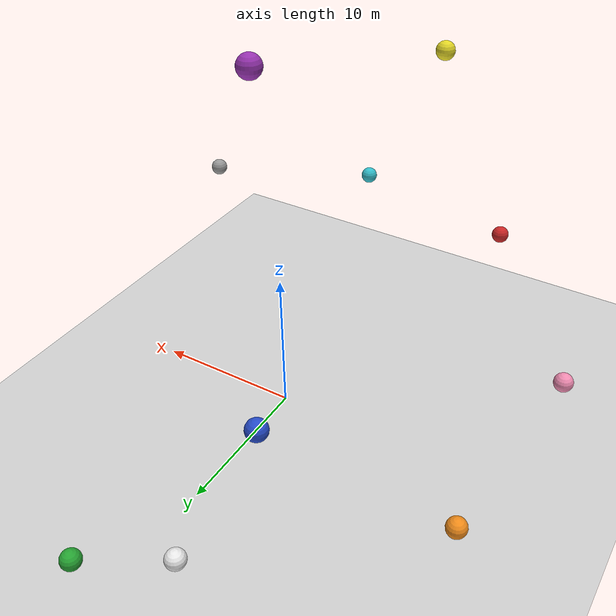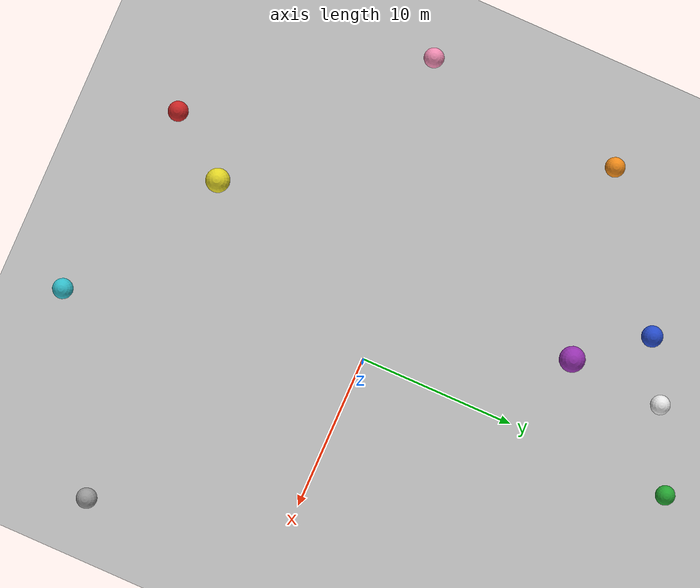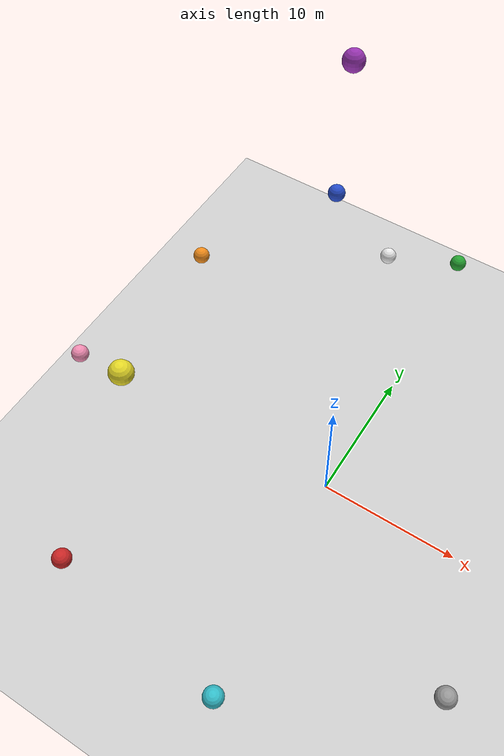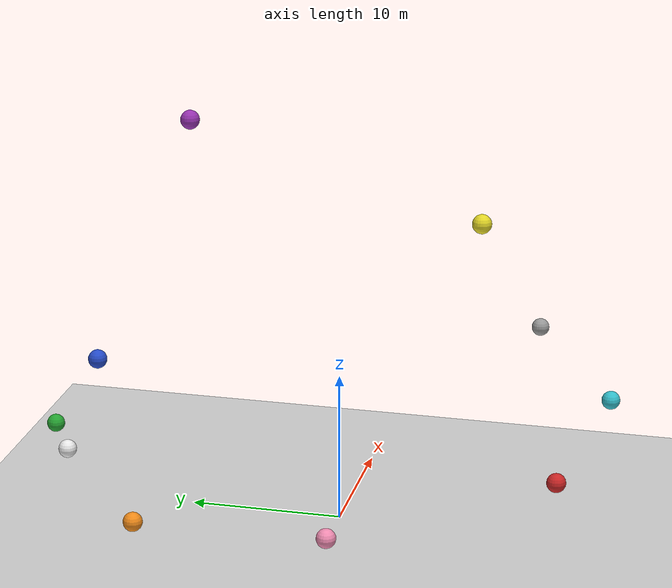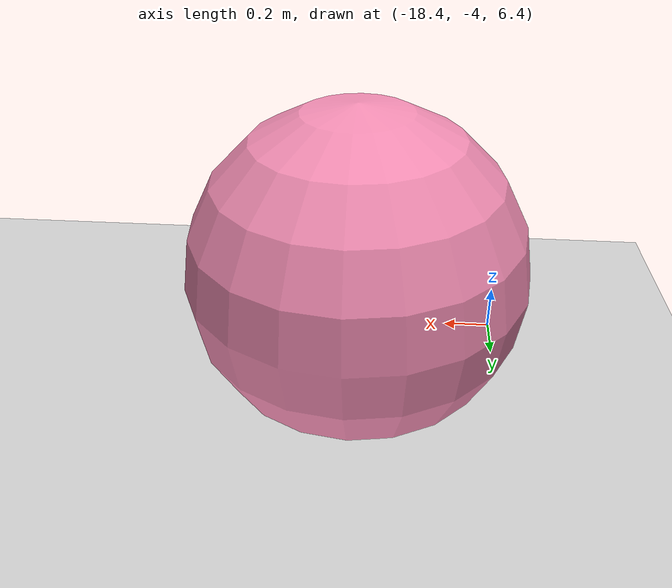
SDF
<?xml version="1.0" ?>
<sdf version="1.4">
  <world name="default">
    <scene>
      <shadows>false</shadows>
      <grid>false</grid>
    </scene>
    <include>
      <uri>model://ground_plane</uri>
    </include>
    <include>
      <uri>model://sun</uri>
    </include>

    <!-- Only one ROS interface plugin is required per world -->
    <plugin name="ros_interface_plugin" filename="librotors_gazebo_ros_interface_plugin.so"/>

    <spherical_coordinates>
      <surface_model>EARTH_WGS84</surface_model>
      <latitude_deg>47.3667</latitude_deg>
      <longitude_deg>8.5500</longitude_deg>
      <elevation>500.0</elevation>
      <heading_deg>0</heading_deg>
    </spherical_coordinates>

    <physics type='ode'>
      <ode>
        <solver>
          <type>quick</type>
          <iters>1000</iters>
          <sor>1.3</sor>
        </solver>
        <constraints>
          <cfm>0</cfm>
          <erp>0.2</erp>
          <contact_max_correcting_vel>100</contact_max_correcting_vel>
          <contact_surface_layer>0.001</contact_surface_layer>
        </constraints>
      </ode>
      <max_step_size>0.005</max_step_size>
      <real_time_factor>0</real_time_factor>
      <real_time_update_rate>5000</real_time_update_rate>
      <gravity>0 0 -9.81</gravity>
    </physics>

    <model name='sphere_obstacle_5'> <!-- Green -->
      <static>false</static>
      <pose>-0.026 19.60 4.875 0 0 0</pose>
      <link name='link'>
        <kinematic>true</kinematic>
        <collision name='collision'>
          <geometry>
            <sphere><radius>0.6</radius></sphere>
          </geometry>
        </collision>
        <visual name='visual'>
          <geometry>
            <sphere><radius>0.6</radius></sphere>
          </geometry>
          <material>
            <script>
              <uri>file://media/materials/scripts/gazebo.material</uri>
              <name>Gazebo/Green</name>
            </script>
          </material>
        </visual>
      </link>
      <plugin name="circle_motion" filename="libcircle_motion_plugin.so">
        <center_x>0.0</center_x>
        <center_y>0.0</center_y>
        <center_z>4.875</center_z>
        <radius>19.6000</radius>
        <speed>0.0</speed>
      </plugin>
    </model>

    <model name='sphere_obstacle_6'> <!-- White -->
      <static>false</static>
      <pose>-4.8 17.093 5.248 0 0 0</pose>
      <link name='link'>
        <kinematic>true</kinematic>
        <collision name='collision'>
          <geometry>
            <sphere><radius>0.6</radius></sphere>
          </geometry>
        </collision>
        <visual name='visual'>
          <geometry>
            <sphere><radius>0.6</radius></sphere>
          </geometry>
          <material>
            <script>
              <uri>file://media/materials/scripts/gazebo.material</uri>
              <name>Gazebo/White</name>
            </script>
          </material>
        </visual>
      </link>
      <plugin name="circle_motion" filename="libcircle_motion_plugin.so">
        <center_x>0.0</center_x>
        <center_y>0.0</center_y>
        <center_z>5.248</center_z>
        <radius>17.7541</radius>
        <speed>0.0</speed>
      </plugin>
    </model>

    <model name='sphere_obstacle_7'> <!-- Orange -->
      <static>false</static>
      <pose>-16.42 8.88 6.17 0 0 0</pose>
      <link name='link'>
        <kinematic>true</kinematic>
        <collision name='collision'>
          <geometry>
            <sphere><radius>0.6</radius></sphere>
          </geometry>
        </collision>
        <visual name='visual'>
          <geometry>
            <sphere><radius>0.6</radius></sphere>
          </geometry>
          <material>
            <script>
              <uri>file://media/materials/scripts/gazebo.material</uri>
              <name>Gazebo/Orange</name>
            </script>
          </material>
        </visual>
      </link>
      <plugin name="circle_motion" filename="libcircle_motion_plugin.so">
        <center_x>0.0</center_x>
        <center_y>0.0</center_y>
        <center_z>6.17</center_z>
        <radius>18.6674</radius>
        <speed>0.0</speed>
      </plugin>
    </model>

    <model name='sphere_obstacle_8'> <!-- Pink -->
      <static>false</static>
      <pose>-17.84 -3.37 7.08 0 0 0</pose>
      <link name='link'>
        <kinematic>true</kinematic>
        <collision name='collision'>
          <geometry>
            <sphere><radius>0.6</radius></sphere>
          </geometry>
        </collision>
        <visual name='visual'>
          <geometry>
            <sphere><radius>0.6</radius></sphere>
          </geometry>
          <material>
            <script>
              <uri>file://media/materials/scripts/gazebo.material</uri>
              <name>Gazebo/Pink</name>
            </script>
          </material>
        </visual>
      </link>
      <plugin name="circle_motion" filename="libcircle_motion_plugin.so">
        <center_x>0.0</center_x>
        <center_y>0.0</center_y>
        <center_z>7.08</center_z>
        <radius>18.1555</radius>
        <speed>0.0</speed>
      </plugin>
    </model>

    <model name='sphere_obstacle_0'> <!-- Red -->
      <static>false</static>
      <pose>-8.96 -15.52 8.00 0 0 0</pose>
      <link name='link'>
        <kinematic>true</kinematic>
        <collision name='collision'>
          <geometry>
            <sphere><radius>0.6</radius></sphere>
          </geometry>
        </collision>
        <visual name='visual'>
          <geometry>
            <sphere><radius>0.6</radius></sphere>
          </geometry>
          <material>
            <script>
              <uri>file://media/materials/scripts/gazebo.material</uri>
              <name>Gazebo/Red</name>
            </script>
          </material>
        </visual>
      </link>
      <plugin name="circle_motion" filename="libcircle_motion_plugin.so">
        <center_x>0.0</center_x>
        <center_y>0.0</center_y>
        <center_z>8.00</center_z>
        <radius>17.9207</radius>
        <speed>0.0</speed>
      </plugin>
    </model>

    <model name='sphere_obstacle_9'> <!-- Cyan -->
      <static>false</static>
      <pose>2.95 -17.31 8.83 0 0 0</pose>
      <link name='link'>
        <kinematic>true</kinematic>
        <collision name='collision'>
          <geometry>
            <sphere><radius>0.6</radius></sphere>
          </geometry>
        </collision>
        <visual name='visual'>
          <geometry>
            <sphere><radius>0.6</radius></sphere>
          </geometry>
          <material>
            <script>
              <uri>file://media/materials/scripts/gazebo.material</uri>
              <name>Gazebo/Cyan</name>
            </script>
          </material>
        </visual>
      </link>
      <plugin name="circle_motion" filename="libcircle_motion_plugin.so">
        <center_x>0.0</center_x>
        <center_y>0.0</center_y>
        <center_z>8.83</center_z>
        <radius>17.5596</radius>
        <speed>0.0</speed>
      </plugin>
    </model>

    <model name='sphere_obstacle_10'> <!-- Grey -->
      <static>false</static>
      <pose>13.13 -11.16 9.66 0 0 0</pose>
      <link name='link'>
        <kinematic>true</kinematic>
        <collision name='collision'>
          <geometry>
            <sphere><radius>0.6</radius></sphere>
          </geometry>
        </collision>
        <visual name='visual'>
          <geometry>
            <sphere><radius>0.6</radius></sphere>
          </geometry>
          <material>
            <script>
              <uri>file://media/materials/scripts/gazebo.material</uri>
              <name>Gazebo/Grey</name>
            </script>
          </material>
        </visual>
      </link>
      <plugin name="circle_motion" filename="libcircle_motion_plugin.so">
        <center_x>0.0</center_x>
        <center_y>0.0</center_y>
        <center_z>9.66</center_z>
        <radius>17.2320</radius>
        <speed>0.0</speed>
      </plugin>
    </model>

    <model name='sphere_obstacle_1'> <!-- Blue -->
      <static>false</static>
      <pose>-7.92 13.71 13.00 0 0 0</pose>
      <link name='link'>
        <kinematic>true</kinematic>
        <collision name='collision'>
          <geometry>
            <sphere><radius>0.6</radius></sphere>
          </geometry>
        </collision>
        <visual name='visual'>
          <geometry>
            <sphere><radius>0.6</radius></sphere>
          </geometry>
          <material>
            <script>
              <uri>file://media/materials/scripts/gazebo.material</uri>
              <name>Gazebo/Blue</name>
            </script>
          </material>
        </visual>
      </link>
      <plugin name="circle_motion" filename="libcircle_motion_plugin.so">
        <center_x>0.0</center_x>
        <center_y>0.0</center_y>
        <center_z>13.00</center_z>
        <radius>15.8332</radius>
        <speed>0.0</speed>
      </plugin>
    </model>

    <model name='sphere_obstacle_3'> <!-- Yellow -->
      <static>false</static>
      <pose>-5.83 -10.10 23.00 0 0 0</pose>
      <link name='link'>
        <kinematic>true</kinematic>
        <collision name='collision'>
          <geometry>
            <sphere><radius>0.6</radius></sphere>
          </geometry>
        </collision>
        <visual name='visual'>
          <geometry>
            <sphere><radius>0.6</radius></sphere>
          </geometry>
          <material>
            <script>
              <uri>file://media/materials/scripts/gazebo.material</uri>
              <name>Gazebo/Yellow</name>
            </script>
          </material>
        </visual>
      </link>
      <plugin name="circle_motion" filename="libcircle_motion_plugin.so">
        <center_x>0.0</center_x>
        <center_y>0.0</center_y>
        <center_z>23.00</center_z>
        <radius>11.6619</radius>
        <speed>0.0</speed>
      </plugin>
    </model>

    <model name='sphere_obstacle_4'> <!-- Purple -->
      <static>false</static>
      <pose>-4.79 8.30 28.00 0 0 0</pose>
      <link name='link'>
        <kinematic>true</kinematic>
        <collision name='collision'>
          <geometry>
            <sphere><radius>0.6</radius></sphere>
          </geometry>
        </collision>
        <visual name='visual'>
          <geometry>
            <sphere><radius>0.6</radius></sphere>
          </geometry>
          <material>
            <script>
              <uri>file://media/materials/scripts/gazebo.material</uri>
              <name>Gazebo/Purple</name>
            </script>
          </material>
        </visual>
      </link>
      <plugin name="circle_motion" filename="libcircle_motion_plugin.so">
        <center_x>0.0</center_x>
        <center_y>0.0</center_y>
        <center_z>28.00</center_z>
        <radius>9.5830</radius>
        <speed>0.0</speed>
      </plugin>
    </model>

 </world>
</sdf>
